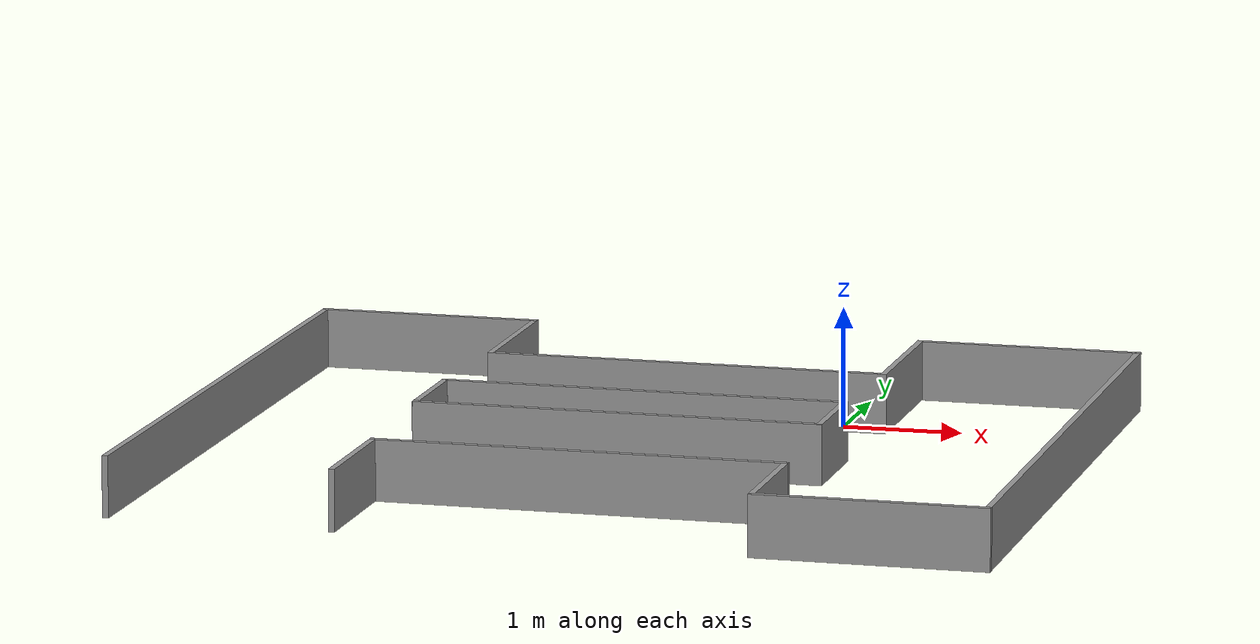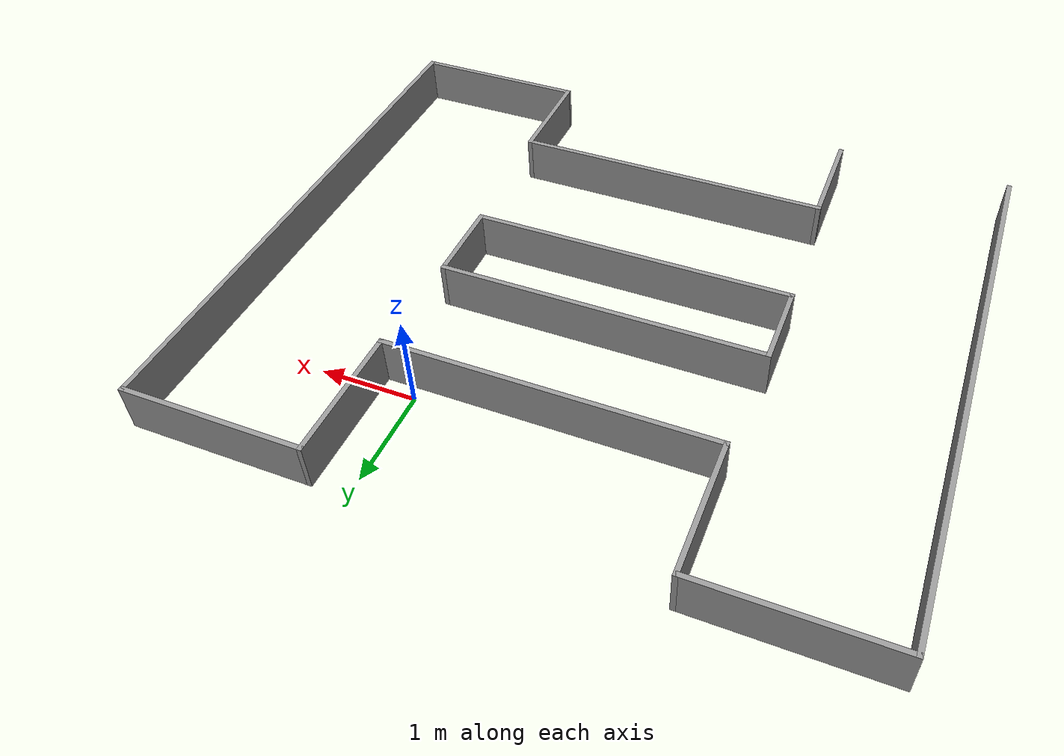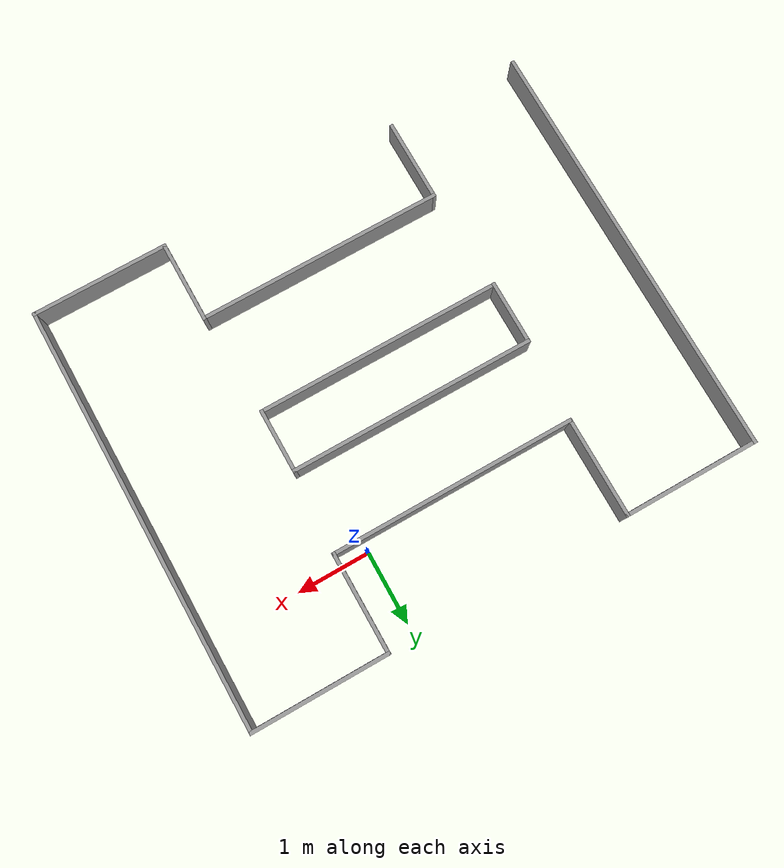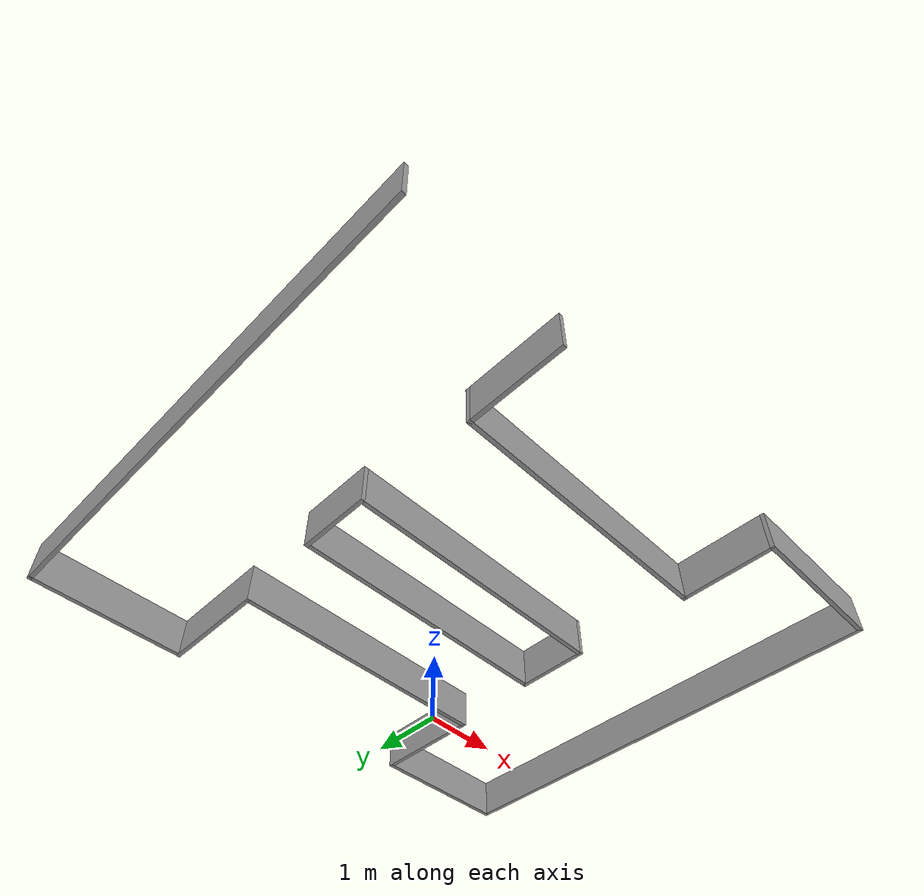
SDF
<?xml version='1.0'?>
<sdf version='1.7'>
  <model name='H_Big'>
    <pose>-1.298 -1.73907 0 0 -0 0</pose>
    <link name='Wall_10'>
      <collision name='Wall_10_Collision'>
        <geometry>
          <box>
            <size>1.15 0.05 0.5</size>
          </box>
        </geometry>
        <pose>0 0 0.25 0 -0 0</pose>
      </collision>
      <visual name='Wall_10_Visual'>
        <pose>0 0 0.25 0 -0 0</pose>
        <geometry>
          <box>
            <size>1.15 0.05 0.5</size>
          </box>
        </geometry>
        <material>
          <script>
            <uri>file://media/materials/scripts/gazebo.material</uri>
            <name>Gazebo/Grey</name>
          </script>
          <ambient>1 1 1 1</ambient>
        </material>
        <meta>
          <layer>0</layer>
        </meta>
      </visual>
      <pose>1.675 -2.37493 0 0 -0 1.5708</pose>
    </link>
    <link name='Wall_11'>
      <collision name='Wall_11_Collision'>
        <geometry>
          <box>
            <size>3.4 0.05 0.5</size>
          </box>
        </geometry>
        <pose>0 0 0.25 0 -0 0</pose>
      </collision>
      <visual name='Wall_11_Visual'>
        <pose>0 0 0.25 0 -0 0</pose>
        <geometry>
          <box>
            <size>3.4 0.05 0.5</size>
          </box>
        </geometry>
        <material>
          <script>
            <uri>file://media/materials/scripts/gazebo.material</uri>
            <name>Gazebo/Grey</name>
          </script>
          <ambient>1 1 1 1</ambient>
        </material>
        <meta>
          <layer>0</layer>
        </meta>
      </visual>
      <pose>0 -1.82493 0 0 -0 3.14159</pose>
    </link>
    <link name='Wall_12'>
      <collision name='Wall_12_Collision'>
        <geometry>
          <box>
            <size>1.15026 0.05 0.5</size>
          </box>
        </geometry>
        <pose>0 0 0.25 0 -0 0</pose>
      </collision>
      <visual name='Wall_12_Visual'>
        <pose>0 0 0.25 0 -0 0</pose>
        <geometry>
          <box>
            <size>1.15026 0.05 0.5</size>
          </box>
        </geometry>
        <material>
          <script>
            <uri>file://media/materials/scripts/gazebo.material</uri>
            <name>Gazebo/Grey</name>
          </script>
          <ambient>1 1 1 1</ambient>
        </material>
        <meta>
          <layer>0</layer>
        </meta>
      </visual>
      <pose>-1.675 -2.37493 0 0 -0 -1.5708</pose>
    </link>
    <link name='Wall_14'>
      <collision name='Wall_14_Collision'>
        <geometry>
          <box>
            <size>0.9 0.05 0.5</size>
          </box>
        </geometry>
        <pose>0 0 0.25 0 -0 0</pose>
      </collision>
      <visual name='Wall_14_Visual'>
        <pose>0 0 0.25 0 -0 0</pose>
        <geometry>
          <box>
            <size>0.9 0.05 0.5</size>
          </box>
        </geometry>
        <material>
          <script>
            <uri>file://media/materials/scripts/gazebo.material</uri>
            <name>Gazebo/Grey</name>
          </script>
          <ambient>1 1 1 1</ambient>
        </material>
        <meta>
          <layer>0</layer>
        </meta>
      </visual>
      <pose>-1.743 0.021065 0 0 -0 -1.5708</pose>
    </link>
    <link name='Wall_15'>
      <collision name='Wall_15_Collision'>
        <geometry>
          <box>
            <size>3.4 0.05 0.5</size>
          </box>
        </geometry>
        <pose>0 0 0.25 0 -0 0</pose>
      </collision>
      <visual name='Wall_15_Visual'>
        <pose>0 0 0.25 0 -0 0</pose>
        <geometry>
          <box>
            <size>3.4 0.05 0.5</size>
          </box>
        </geometry>
        <material>
          <script>
            <uri>file://media/materials/scripts/gazebo.material</uri>
            <name>Gazebo/Grey</name>
          </script>
          <ambient>1 1 1 1</ambient>
        </material>
        <meta>
          <layer>0</layer>
        </meta>
      </visual>
      <pose>-0.068 -0.403935 0 0 -0 0</pose>
    </link>
    <link name='Wall_16'>
      <collision name='Wall_16_Collision'>
        <geometry>
          <box>
            <size>0.9 0.05 0.5</size>
          </box>
        </geometry>
        <pose>0 0 0.25 0 -0 0</pose>
      </collision>
      <visual name='Wall_16_Visual'>
        <pose>0 0 0.25 0 -0 0</pose>
        <geometry>
          <box>
            <size>0.9 0.05 0.5</size>
          </box>
        </geometry>
        <material>
          <script>
            <uri>file://media/materials/scripts/gazebo.material</uri>
            <name>Gazebo/Grey</name>
          </script>
          <ambient>1 1 1 1</ambient>
        </material>
        <meta>
          <layer>0</layer>
        </meta>
      </visual>
      <pose>1.607 0.021065 0 0 -0 1.5708</pose>
    </link>
    <link name='Wall_17'>
      <collision name='Wall_17_Collision'>
        <geometry>
          <box>
            <size>3.3998 0.05 0.5</size>
          </box>
        </geometry>
        <pose>0 0 0.25 0 -0 0</pose>
      </collision>
      <visual name='Wall_17_Visual'>
        <pose>0 0 0.25 0 -0 0</pose>
        <geometry>
          <box>
            <size>3.3998 0.05 0.5</size>
          </box>
        </geometry>
        <material>
          <script>
            <uri>file://media/materials/scripts/gazebo.material</uri>
            <name>Gazebo/Grey</name>
          </script>
          <ambient>1 1 1 1</ambient>
        </material>
        <meta>
          <layer>0</layer>
        </meta>
      </visual>
      <pose>-0.068 0.446065 0 0 -0 3.14159</pose>
    </link>
    <link name='Wall_2'>
      <collision name='Wall_2_Collision'>
        <geometry>
          <box>
            <size>5.9 0.05 0.5</size>
          </box>
        </geometry>
        <pose>0 0 0.25 0 -0 0</pose>
      </collision>
      <visual name='Wall_2_Visual'>
        <pose>0 0 0.25 0 -0 0</pose>
        <geometry>
          <box>
            <size>5.9 0.05 0.5</size>
          </box>
        </geometry>
        <material>
          <script>
            <uri>file://media/materials/scripts/gazebo.material</uri>
            <name>Gazebo/Grey</name>
          </script>
          <ambient>1 1 1 1</ambient>
        </material>
        <meta>
          <layer>0</layer>
        </meta>
      </visual>
      <pose>-3.525 6.5e-05 0 0 -0 1.5708</pose>
    </link>
    <link name='Wall_3'>
      <collision name='Wall_3_Collision'>
        <geometry>
          <box>
            <size>1.9 0.05 0.5</size>
          </box>
        </geometry>
        <pose>0 0 0.25 0 -0 0</pose>
      </collision>
      <visual name='Wall_3_Visual'>
        <pose>0 0 0.25 0 -0 0</pose>
        <geometry>
          <box>
            <size>1.9 0.05 0.5</size>
          </box>
        </geometry>
        <material>
          <script>
            <uri>file://media/materials/scripts/gazebo.material</uri>
            <name>Gazebo/Grey</name>
          </script>
          <ambient>1 1 1 1</ambient>
        </material>
        <meta>
          <layer>0</layer>
        </meta>
      </visual>
      <pose>-2.6 2.92507 0 0 -0 0</pose>
    </link>
    <link name='Wall_4'>
      <collision name='Wall_4_Collision'>
        <geometry>
          <box>
            <size>1.4 0.05 0.5</size>
          </box>
        </geometry>
        <pose>0 0 0.25 0 -0 0</pose>
      </collision>
      <visual name='Wall_4_Visual'>
        <pose>0 0 0.25 0 -0 0</pose>
        <geometry>
          <box>
            <size>1.4 0.05 0.5</size>
          </box>
        </geometry>
        <material>
          <script>
            <uri>file://media/materials/scripts/gazebo.material</uri>
            <name>Gazebo/Grey</name>
          </script>
          <ambient>1 1 1 1</ambient>
        </material>
        <meta>
          <layer>0</layer>
        </meta>
      </visual>
      <pose>-1.675 2.25007 0 0 -0 -1.5708</pose>
    </link>
    <link name='Wall_5'>
      <collision name='Wall_5_Collision'>
        <geometry>
          <box>
            <size>3.4 0.05 0.5</size>
          </box>
        </geometry>
        <pose>0 0 0.25 0 -0 0</pose>
      </collision>
      <visual name='Wall_5_Visual'>
        <pose>0 0 0.25 0 -0 0</pose>
        <geometry>
          <box>
            <size>3.4 0.05 0.5</size>
          </box>
        </geometry>
        <material>
          <script>
            <uri>file://media/materials/scripts/gazebo.material</uri>
            <name>Gazebo/Grey</name>
          </script>
          <ambient>1 1 1 1</ambient>
        </material>
        <meta>
          <layer>0</layer>
        </meta>
      </visual>
      <pose>0 1.57506 0 0 -0 0</pose>
    </link>
    <link name='Wall_6'>
      <collision name='Wall_6_Collision'>
        <geometry>
          <box>
            <size>1.4 0.05 0.5</size>
          </box>
        </geometry>
        <pose>0 0 0.25 0 -0 0</pose>
      </collision>
      <visual name='Wall_6_Visual'>
        <pose>0 0 0.25 0 -0 0</pose>
        <geometry>
          <box>
            <size>1.4 0.05 0.5</size>
          </box>
        </geometry>
        <material>
          <script>
            <uri>file://media/materials/scripts/gazebo.material</uri>
            <name>Gazebo/Grey</name>
          </script>
          <ambient>1 1 1 1</ambient>
        </material>
        <meta>
          <layer>0</layer>
        </meta>
      </visual>
      <pose>1.675 2.25007 0 0 -0 1.5708</pose>
    </link>
    <link name='Wall_7'>
      <collision name='Wall_7_Collision'>
        <geometry>
          <box>
            <size>1.9 0.05 0.5</size>
          </box>
        </geometry>
        <pose>0 0 0.25 0 -0 0</pose>
      </collision>
      <visual name='Wall_7_Visual'>
        <pose>0 0 0.25 0 -0 0</pose>
        <geometry>
          <box>
            <size>1.9 0.05 0.5</size>
          </box>
        </geometry>
        <material>
          <script>
            <uri>file://media/materials/scripts/gazebo.material</uri>
            <name>Gazebo/Grey</name>
          </script>
          <ambient>1 1 1 1</ambient>
        </material>
        <meta>
          <layer>0</layer>
        </meta>
      </visual>
      <pose>2.6 2.92507 0 0 -0 0</pose>
    </link>
    <link name='Wall_8'>
      <collision name='Wall_8_Collision'>
        <geometry>
          <box>
            <size>5.9 0.05 0.5</size>
          </box>
        </geometry>
        <pose>0 0 0.25 0 -0 0</pose>
      </collision>
      <visual name='Wall_8_Visual'>
        <pose>0 0 0.25 0 -0 0</pose>
        <geometry>
          <box>
            <size>5.9 0.05 0.5</size>
          </box>
        </geometry>
        <material>
          <script>
            <uri>file://media/materials/scripts/gazebo.material</uri>
            <name>Gazebo/Grey</name>
          </script>
          <ambient>1 1 1 1</ambient>
        </material>
        <meta>
          <layer>0</layer>
        </meta>
      </visual>
      <pose>3.525 6.5e-05 0 0 -0 -1.5708</pose>
    </link>
    <link name='Wall_9'>
      <collision name='Wall_9_Collision'>
        <geometry>
          <box>
            <size>1.9 0.05 0.5</size>
          </box>
        </geometry>
        <pose>0 0 0.25 0 -0 0</pose>
      </collision>
      <visual name='Wall_9_Visual'>
        <pose>0 0 0.25 0 -0 0</pose>
        <geometry>
          <box>
            <size>1.9 0.05 0.5</size>
          </box>
        </geometry>
        <material>
          <script>
            <uri>file://media/materials/scripts/gazebo.material</uri>
            <name>Gazebo/Grey</name>
          </script>
          <ambient>1 1 1 1</ambient>
        </material>
        <meta>
          <layer>0</layer>
        </meta>
      </visual>
      <pose>2.6 -2.92494 0 0 -0 3.14159</pose>
    </link>
    <static>1</static>
  </model>
</sdf>
